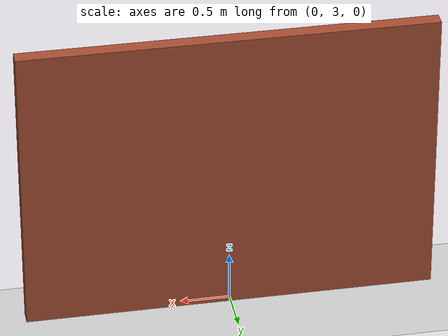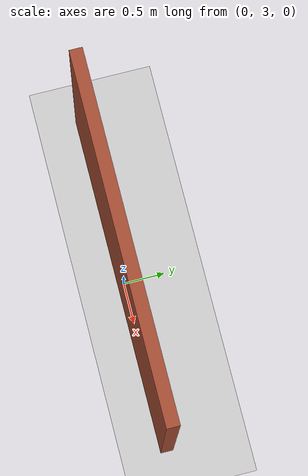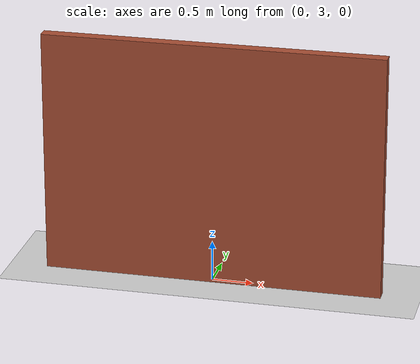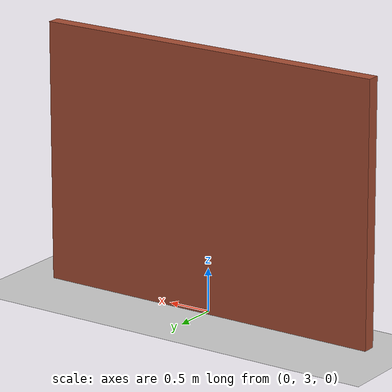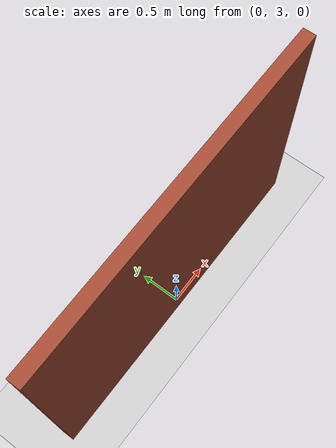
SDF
<sdf version="1.7">

  <world name="default">
  <model name='wall'>
    <pose>0 1.5375 0 0 -0 0</pose>
    <link name='Wall_6'>
      <collision name='Wall_6_Collision'>
        <geometry>
          <box>
            <size>4.15 0.15 3</size>
          </box>
        </geometry>
        <pose>0 0 1.5 0 -0 0</pose>
      </collision>
      <visual name='Wall_6_Visual'>
        <pose>0 0 1.5 0 -0 0</pose>
        <geometry>
          <box>
            <size>4.15 0.15 3</size>
          </box>
        </geometry>
        <material>
          <script>
            <uri>file://media/materials/scripts/gazebo.material</uri>
            <name>Gazebo/Bricks</name>
          </script>
          <ambient>1 1 1 1</ambient>
        </material>
        <meta>
          <layer>0</layer>
        </meta>
      </visual>
      <pose>0 1.4625 0 0 -0 0</pose>
    </link>
    <static>1</static>
  </model>

    <!-- Martian Gravity-->
    <gravity>0 0 -3.711</gravity>
    <include>
      <uri>model://sun</uri>
    </include>
    <include>
      <uri>model://ground_plane</uri>
    </include>

  </world>
</sdf>
